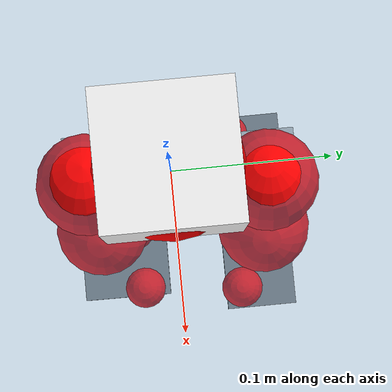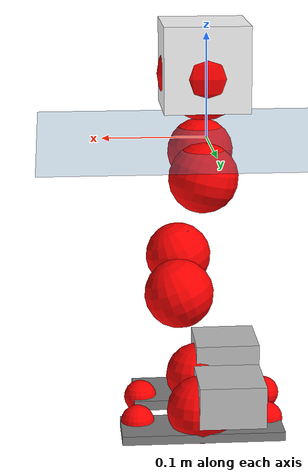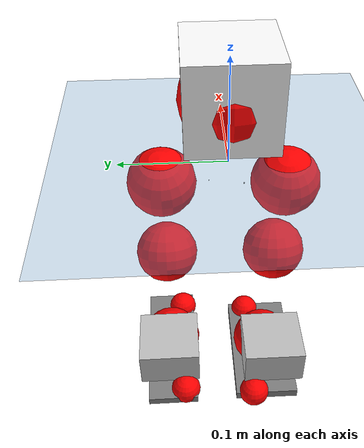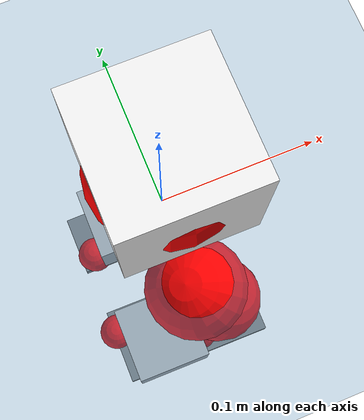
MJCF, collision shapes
<mujoco model="pi_12dof_release_v1">
  <compiler angle="radian" assetdir="assets" balanceinertia="true" inertiafromgeom="false"/>

  <option timestep="0.005" density="1.2" viscosity="2e-05"/>

  <size nkey="1"/>

  <visual>
    <quality shadowsize="8192"/>
    <map shadowclip="0.5"/>
  </visual>

  <default>
    <default class="/">
      <joint armature="0.01" damping="0.01" frictionloss="0.01"/>
      <geom contype="0" conaffinity="0" group="1" solref="-1000 -80"/>
      <site size="0.01 0.005 0.005" group="5"/>
      <general forcelimited="true" biastype="affine" gainprm="20" biasprm="0 -20 -0.5"/>
      <default class="foot">
        <geom size="0.0845 0.036 0.005" type="box" condim="6" group="4" priority="1" friction="0.9 0.2 0.2" solimp="0.015 1 0.005"/>
      </default>
      <default class="reward_collision_sphere">
        <geom group="5" rgba="1 0 0 1"/>
      </default>
    </default>
  </default>

  <asset>
    <texture type="skybox" colorspace="auto" name="//unnamed_texture_0" builtin="gradient" rgb1="0.95 0.95 0.95" rgb2="0.95 0.95 0.95" width="100" height="600"/>
    <texture type="2d" colorspace="auto" name="texplane" builtin="checker" rgb1="0.345 0.575 0.748" rgb2="0.345 0.575 0.748" markrgb="1 1 1" width="512" height="512"/>
    <material name="MatPlane" class="/" texture="texplane" texuniform="true" texrepeat="2 2" specular="0.9"/>
    <mesh name="baselink_1" class="/" file="baselink_1.STL"/>
    <mesh name="r_hip_pitch_link" class="/" file="r_hip_pitch_link.STL"/>
    <mesh name="r_hip_roll_link" class="/" file="r_hip_roll_link.STL"/>
    <mesh name="r_thigh_link" class="/" file="r_thigh_link.STL"/>
    <mesh name="r_calf_link" class="/" file="r_calf_link.STL"/>
    <mesh name="r_ankle_pitch_link" class="/" file="r_ankle_pitch_link.STL"/>
    <mesh name="r_ankle_roll_link" class="/" file="r_ankle_roll_link.STL"/>
    <mesh name="l_hip_pitch_link" class="/" file="l_hip_pitch_link.STL"/>
    <mesh name="l_hip_roll_link" class="/" file="l_hip_roll_link.STL"/>
    <mesh name="l_thigh_link" class="/" file="l_thigh_link.STL"/>
    <mesh name="l_calf_link" class="/" file="l_calf_link.STL"/>
    <mesh name="l_ankle_pitch_link" class="/" file="l_ankle_pitch_link.STL"/>
    <mesh name="l_ankle_roll_link" class="/" file="l_ankle_roll_link.STL"/>
  </asset>

  <worldbody>
    <geom name="floor" class="/" size="100 100 0.125" type="plane" group="0" material="MatPlane"/>
    <light name="toplight_shadow" class="/" pos="0 0 5" dir="0.0990148 0.0990148 -0.990148" type="directional" ambient="0.04 0.04 0.04" diffuse="0.55 0.55 0.55" specular="0.12 0.12 0.12"/>
    <light name="toplight_fill" class="/" pos="0 0 5" dir="0.0990148 0.0990148 -0.990148" type="directional" castshadow="false" ambient="0.04 0.04 0.04" diffuse="0.3 0.3 0.3" specular="0.08 0.08 0.08"/>
    <body name="trunk" pos="0.00222486 -0.000695355 0.00543352" quat="0.999997 -0.00168297 0.00133883 -0.000638599">
      <inertial pos="0.00618827 -0.00332205 0.0335774" quat="0.696232 -0.00379419 -0.00620908 0.71778" mass="1.11195" diaginertia="0.00600335 0.00156656 0.00130755"/>
      <joint name="//unnamed_joint_0" type="free"/>
      <geom name="//unnamed_geom_1" class="/" type="mesh" density="0" rgba="1 1 1 1" mesh="baselink_1"/>
      <geom name="//unnamed_geom_2" class="/" size="0.0408487 0.0408487 0.0408487" pos="0 0 0.0643243" type="box" rgba="1 1 1 1"/>
      <geom name="//unnamed_geom_3" class="reward_collision_sphere" size="0.0449335" pos="0 0 0.0562838"/>
      <site name="imu" class="/" pos="0.012246 -0.00105202 0.0115425" size="0.00816974"/>
      <camera name="track" class="/" pos="0 -1.44085 0" quat="0.707107 0.707107 0 0" mode="trackcom"/>
      <camera name="ego_camera" class="/" pos="0.069483 0 0.14473" quat="-0.5 -0.5 0.5 0.5"/>
      <body name="r_hip_pitch_link" pos="-0.00473541 -0.014159 -0.0286377" quat="0.992198 -0.000198297 -0.12467 -0.000127832">
        <inertial pos="0.00488424 -0.0426992 0.00496054" quat="-0.0333643 0.69026 -0.0279027 0.722253" mass="0.202536" diaginertia="7.25079e-05 1.85352e-05 2.78127e-05"/>
        <joint name="r_hip_pitch_joint" class="/" pos="0 0 0" axis="-0.00237864 -0.999997 0.000912131" stiffness="0.000271774" range="-1.68908 1.20093" armature="0.007785" damping="0.0229551" frictionloss="0.00915216"/>
        <geom name="//unnamed_geom_4" class="/" type="mesh" density="0" rgba="0.75294 0.75294 0.75294 1" mesh="r_hip_pitch_link"/>
        <geom name="//unnamed_geom_5" class="/" size="0.000408487 0.000408487 0.000408487" type="box" rgba="0.75294 0.75294 0.75294 1"/>
        <body name="r_hip_roll_link" pos="0.00300492 -0.0391755 -0.00250914" quat="1 -0.000165141 3.37542e-05 -0.000189291">
          <inertial pos="0.00225474 -0.000625503 -0.0547714" quat="0.701971 -0.0860276 -0.0778609 0.70269" mass="0.227651" diaginertia="0.000245244 5.61573e-05 4.65244e-05"/>
          <joint name="r_hip_roll_joint" class="/" pos="0 0 0" axis="-0.999962 0.00790252 0.00365006" range="-0.135263 0.508302" armature="0.0106341" damping="0.0052814" frictionloss="0.00799031"/>
          <geom name="//unnamed_geom_6" class="/" type="mesh" density="0" rgba="0.75294 0.75294 0.75294 1" mesh="r_hip_roll_link"/>
          <geom name="//unnamed_geom_7" class="/" size="0.000408487 0.000408487 0.000408487" type="box" rgba="0.75294 0.75294 0.75294 1"/>
          <geom name="//unnamed_geom_8" class="reward_collision_sphere" size="0.0326789"/>
          <body name="r_thigh_link" pos="-0.00465012 0.00129472 -0.0542986" quat="1 -1.23089e-05 0.000243604 7.84783e-05">
            <inertial pos="0.00687856 0.00573618 -0.0390208" quat="0.737834 0.674961 0.00149858 0.00511644" mass="0.0605107" diaginertia="8.89507e-05 1.864e-05 1.94356e-05"/>
            <joint name="r_thigh_joint" class="/" pos="0 0 0" axis="0.00155827 0.00491254 -0.999987" range="-0.313781 0.528337" armature="0.0103104" damping="0" frictionloss="0.00718051"/>
            <geom name="//unnamed_geom_9" class="/" type="mesh" density="0" rgba="0.75294 0.75294 0.75294 1" mesh="r_thigh_link"/>
            <geom name="//unnamed_geom_10" class="/" size="0.000408487 0.000408487 0.000408487" type="box" rgba="0.75294 0.75294 0.75294 1"/>
            <body name="r_calf_link" pos="-0.000104089 0.000291662 -0.0547464" quat="0.947009 0.000652512 0.321201 -0.00202352">
              <inertial pos="-0.00216452 -0.000703821 -0.0576075" quat="0.99953 0.0113698 -0.0104952 0.0264707" mass="0.401938" diaginertia="0.00241333 0.000660001 5.88229e-05"/>
              <joint name="r_calf_joint" class="/" pos="0 0 0" axis="-0.00542549 -0.999889 0.0138753" range="-1.64127 0.653694" armature="0.00832198" damping="0.00676447" frictionloss="0.00891676"/>
              <geom name="//unnamed_geom_11" class="/" type="mesh" density="0" rgba="0.75294 0.75294 0.75294 1" mesh="r_calf_link"/>
              <geom name="//unnamed_geom_12" class="/" size="0.000408487 0.000408487 0.000408487" type="box" rgba="0.75294 0.75294 0.75294 1"/>
              <geom name="//unnamed_geom_13" class="reward_collision_sphere" size="0.0326789"/>
              <body name="r_ankle_pitch_link" pos="-0.00127225 0.00101022 -0.11851" quat="0.980043 -0.000449228 -0.198784 -0.000358975">
                <inertial pos="0.00341171 0.00183023 -0.00227398" quat="0.000235805 0.707323 0.00854929 0.706839" mass="0.0937478" diaginertia="0.000213087 4.46699e-05 4.09826e-05"/>
                <joint name="r_ankle_pitch_joint" class="/" pos="0 0 0" axis="0.000350508 -0.999993 -0.00373151" stiffness="0.00696974" range="-1.30167 0.490618" armature="0.00749695" damping="0" frictionloss="0.00914546"/>
                <geom name="//unnamed_geom_14" class="/" type="mesh" density="0" rgba="0.75294 0.75294 0.75294 1" mesh="r_ankle_pitch_link"/>
                <geom name="//unnamed_geom_15" class="/" size="0.031862 0.0326789 0.0204243" type="box" rgba="0.75294 0.75294 0.75294 1"/>
                <body name="r_ankle_roll_link" pos="0.0748745 0.00739422 -0.0012359" quat="0.999999 0.00102883 0.000215972 -0.000720389">
                  <inertial pos="-0.0254013 0.00435003 -0.0144144" quat="0.540015 0.453622 0.432476 0.561761" mass="0.289061" diaginertia="0.000799443 0.000201406 0.000101176"/>
                  <joint name="r_ankle_roll_joint" class="/" pos="0 0 0" axis="-0.999969 0.00579294 0.00539854" stiffness="0.000178389" range="-0.025191 0.147752" armature="0.00957876" damping="0" frictionloss="0.0100486"/>
                  <geom name="//unnamed_geom_16" class="/" type="mesh" density="0" rgba="0.75294 0.75294 0.75294 1" mesh="r_ankle_roll_link"/>
                  <geom name="//unnamed_geom_17" class="/" type="mesh" rgba="0.75294 0.75294 0.75294 1" mesh="r_ankle_roll_link"/>
                  <geom name="right_foot" class="foot" size="0.0676208 0.0343859 0.00486149" pos="-0.0472485 0 -0.0353784"/>
                  <geom name="//unnamed_geom_19" class="reward_collision_sphere" size="0.0326789" pos="-0.046322 0 -0.0160811"/>
                  <geom name="//unnamed_geom_20" class="reward_collision_sphere" size="0.0163395" pos="0.0138966 0.0144085 -0.0321622"/>
                  <geom name="//unnamed_geom_21" class="reward_collision_sphere" size="0.0163395" pos="-0.111173 0.0144085 -0.0321622"/>
                  <site name="right_foot" class="foot" pos="-0.0472485 0 -0.0353784" size="0.00816974"/>
                </body>
              </body>
            </body>
          </body>
        </body>
      </body>
      <body name="l_hip_pitch_link" pos="0.000806137 0.018069 -0.0280589" quat="0.992131 -0.000441786 -0.1252 -0.00052094">
        <inertial pos="-0.00140215 0.043126 0.00534687" quat="-0.0388864 0.70099 0.0329765 0.711346" mass="0.207392" diaginertia="8.70113e-05 2.07935e-05 3.48426e-05"/>
        <joint name="l_hip_pitch_joint" class="/" pos="0 0 0" axis="-0.00705916 0.999862 -0.0150695" stiffness="0.00510169" range="-1.1411 1.74584" armature="0.00828156" damping="0.0135333" frictionloss="0.00829083"/>
        <geom name="//unnamed_geom_22" class="/" type="mesh" density="0" rgba="0.75294 0.75294 0.75294 1" mesh="l_hip_pitch_link"/>
        <geom name="//unnamed_geom_23" class="/" size="0.000408487 0.000408487 0.000408487" type="box" rgba="0.75294 0.75294 0.75294 1"/>
        <body name="l_hip_roll_link" pos="0.00425861 0.0440173 -0.00500813" quat="1 0.000804585 0.0001162 -0.000565717">
          <inertial pos="-0.00770012 0.00185431 -0.0430712" quat="0.698979 -0.0748895 -0.0790593 0.706802" mass="0.191645" diaginertia="0.000196845 5.08645e-05 3.89948e-05"/>
          <joint name="l_hip_roll_joint" class="/" pos="0 0 0" axis="-0.999957 0.00456954 -0.0081014" range="-0.506464 0.117084" armature="0.00876249" damping="0" frictionloss="0.00826068"/>
          <geom name="//unnamed_geom_24" class="/" type="mesh" density="0" rgba="0.75294 0.75294 0.75294 1" mesh="l_hip_roll_link"/>
          <geom name="//unnamed_geom_25" class="/" size="0.000408487 0.000408487 0.000408487" type="box" rgba="0.75294 0.75294 0.75294 1"/>
          <geom name="//unnamed_geom_26" class="reward_collision_sphere" size="0.0326789"/>
          <body name="l_thigh_link" pos="0.00138451 -0.00141973 -0.0528316" quat="0.999999 -2.86275e-05 -0.00117862 0.000209522">
            <inertial pos="0.0053407 -0.00224607 -0.0327562" quat="0.678951 0.733919 0.0166161 0.0105923" mass="0.0635327" diaginertia="8.62467e-05 1.86208e-05 2.0125e-05"/>
            <joint name="l_thigh_joint" class="/" pos="0 0 0" axis="-0.00212816 -0.0058111 -0.999981" range="-0.621372 0.238618" armature="0.0073924" damping="0" frictionloss="0.00579652"/>
            <geom name="//unnamed_geom_27" class="/" type="mesh" density="0" rgba="0.75294 0.75294 0.75294 1" mesh="l_thigh_link"/>
            <geom name="//unnamed_geom_28" class="/" size="0.000408487 0.000408487 0.000408487" type="box" rgba="0.75294 0.75294 0.75294 1"/>
            <body name="l_calf_link" pos="-0.0067558 0.00195968 -0.0602537" quat="0.947615 4.95744e-05 0.319415 -4.81584e-05">
              <inertial pos="0.00281139 0.00274771 -0.0581667" quat="0.999756 -0.010435 0.0128494 0.0146338" mass="0.447637" diaginertia="0.00210623 0.000635107 5.48539e-05"/>
              <joint name="l_calf_joint" class="/" pos="0 0 0" axis="-0.000547072 0.999997 -0.00258298" stiffness="0.0122214" range="-0.580164 1.56522" armature="0.00901709" damping="0.00734719" frictionloss="0.00783159"/>
              <geom name="//unnamed_geom_29" class="/" type="mesh" density="0" rgba="0.75294 0.75294 0.75294 1" mesh="l_calf_link"/>
              <geom name="//unnamed_geom_30" class="/" size="0.000408487 0.000408487 0.000408487" type="box" rgba="0.75294 0.75294 0.75294 1"/>
              <geom name="//unnamed_geom_31" class="reward_collision_sphere" size="0.0326789"/>
              <body name="l_ankle_pitch_link" pos="-0.00422761 0.00252151 -0.115029" quat="0.979809 -0.000386825 -0.199936 -0.00045989">
                <inertial pos="0.00578096 -0.00102665 0.00376898" quat="-0.00511231 0.709626 0.00393991 0.704549" mass="0.10049" diaginertia="0.000196083 4.2139e-05 4.04093e-05"/>
                <joint name="l_ankle_pitch_joint" class="/" pos="0 0 0" axis="-0.00125585 0.999999 -0.00105576" range="-0.489445 1.34199" armature="0.00769194" damping="0.036593" frictionloss="0.00916067"/>
                <geom name="//unnamed_geom_32" class="/" type="mesh" density="0" rgba="0.75294 0.75294 0.75294 1" mesh="l_ankle_pitch_link"/>
                <geom name="//unnamed_geom_33" class="/" size="0.031862 0.0326789 0.0204243" type="box" rgba="0.75294 0.75294 0.75294 1"/>
                <body name="l_ankle_roll_link" pos="0.0740876 -0.00205956 0.00295944" quat="0.999995 0.00227649 0.000665697 0.00230931">
                  <inertial pos="-0.0221427 4.48267e-05 -0.0125692" quat="0.572187 0.413558 0.43355 0.560006" mass="0.272704" diaginertia="0.000745098 0.00019982 0.000100063"/>
                  <joint name="l_ankle_roll_joint" class="/" pos="0 0 0" axis="-0.999999 0.00120611 0.000468778" range="-0.115707 0.280559" armature="0.00859489" damping="0.0113661" frictionloss="0.00791214"/>
                  <geom name="//unnamed_geom_34" class="/" type="mesh" density="0" rgba="0.75294 0.75294 0.75294 1" mesh="l_ankle_roll_link"/>
                  <geom name="//unnamed_geom_35" class="/" type="mesh" rgba="0.75294 0.75294 0.75294 1" mesh="l_ankle_roll_link"/>
                  <geom name="left_foot" class="foot" size="0.0777089 0.027422 0.00429334" pos="-0.0472485 0 -0.0353784"/>
                  <geom name="//unnamed_geom_37" class="reward_collision_sphere" size="0.0326789" pos="-0.046322 0 -0.0160811"/>
                  <geom name="//unnamed_geom_38" class="reward_collision_sphere" size="0.0163395" pos="0.0138966 -0.0144085 -0.0321622"/>
                  <geom name="//unnamed_geom_39" class="reward_collision_sphere" size="0.0163395" pos="-0.111173 -0.0144085 -0.0321622"/>
                  <site name="left_foot" class="foot" pos="-0.0472485 0 -0.0353784" size="0.00816974"/>
                </body>
              </body>
            </body>
          </body>
        </body>
      </body>
    </body>
  </worldbody>

  <contact>
    <pair class="/" geom1="floor" geom2="right_foot" name="//unnamed_contact_1"/>
    <pair class="/" geom1="floor" geom2="left_foot" name="//unnamed_contact_0"/>
  </contact>

  <actuator>
    <general name="r_hip_pitch_joint" class="/" joint="r_hip_pitch_joint" forcerange="-14.9759 14.9759" gainprm="18.9812" biasprm="0 -18.9812 -0.453205"/>
    <general name="r_hip_roll_joint" class="/" joint="r_hip_roll_joint" forcerange="-21.0397 21.0397" gainprm="18.9812" biasprm="0 -18.9812 -0.453205"/>
    <general name="r_thigh_joint" class="/" joint="r_thigh_joint" forcerange="-17.6623 17.6623" gainprm="18.9812" biasprm="0 -18.9812 -0.453205"/>
    <general name="r_calf_joint" class="/" joint="r_calf_joint" forcerange="-12.9908 12.9908" gainprm="18.9812" biasprm="0 -18.9812 -0.453205"/>
    <general name="r_ankle_pitch_joint" class="/" joint="r_ankle_pitch_joint" forcerange="-16.428 16.428" gainprm="18.9812" biasprm="0 -18.9812 -0.453205"/>
    <general name="r_ankle_roll_joint" class="/" joint="r_ankle_roll_joint" forcerange="-20.9359 20.9359" gainprm="18.9812" biasprm="0 -18.9812 -0.453205"/>
    <general name="l_hip_pitch_joint" class="/" joint="l_hip_pitch_joint" forcerange="-17.476 17.476" gainprm="18.9812" biasprm="0 -18.9812 -0.453205"/>
    <general name="l_hip_roll_joint" class="/" joint="l_hip_roll_joint" forcerange="-18.7324 18.7324" gainprm="18.9812" biasprm="0 -18.9812 -0.453205"/>
    <general name="l_thigh_joint" class="/" joint="l_thigh_joint" forcerange="-17.1112 17.1112" gainprm="18.9812" biasprm="0 -18.9812 -0.453205"/>
    <general name="l_calf_joint" class="/" joint="l_calf_joint" forcerange="-15.6338 15.6338" gainprm="18.9812" biasprm="0 -18.9812 -0.453205"/>
    <general name="l_ankle_pitch_joint" class="/" joint="l_ankle_pitch_joint" forcerange="-17.2384 17.2384" gainprm="18.9812" biasprm="0 -18.9812 -0.453205"/>
    <general name="l_ankle_roll_joint" class="/" joint="l_ankle_roll_joint" forcerange="-17.3304 17.3304" gainprm="18.9812" biasprm="0 -18.9812 -0.453205"/>
  </actuator>

  <sensor>
    <gyro site="imu" name="imu_angular_velocity"/>
    <velocimeter site="imu" name="imu_linear_velocity"/>
    <framelinvel objtype="site" objname="left_foot" name="left_foot_global_linear_velocity"/>
    <framelinvel objtype="site" objname="right_foot" name="right_foot_global_linear_velocity"/>
  </sensor>

  <keyframe>
    <key name="home" qpos="0 0 0.291 1 0 0 0 0.4 0 0 -0.8 0.4 0 -0.4 0 0 0.8 -0.4 0"/>
  </keyframe>
</mujoco>
